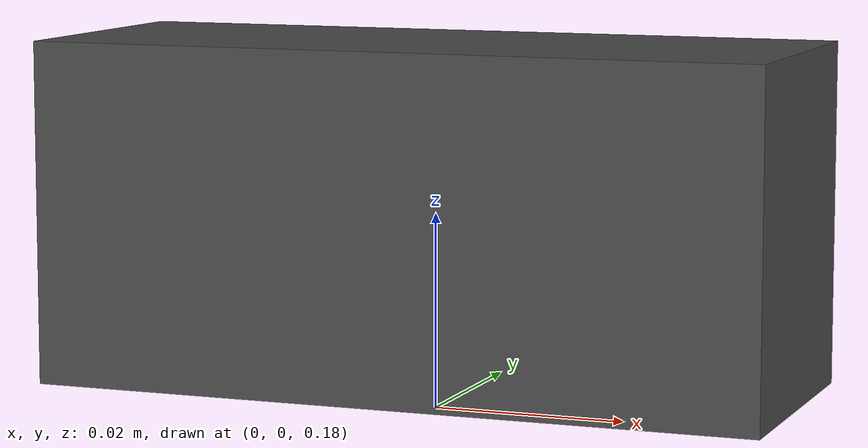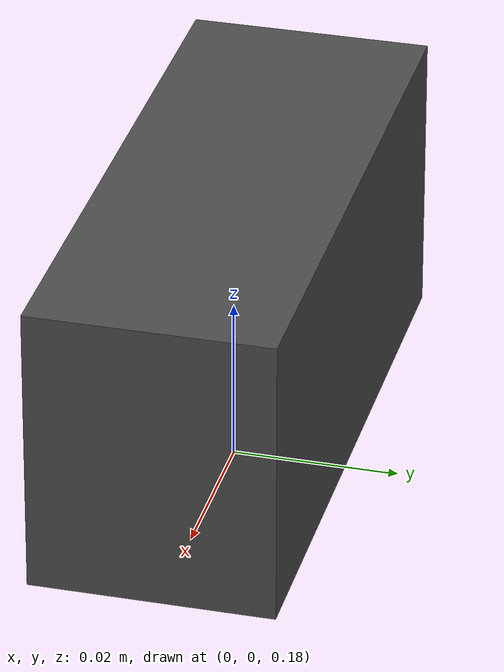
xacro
<?xml version="1.0"?>
<robot xmlns:xacro="http://www.ros.org/wiki/xacro" name="flea3">

  <link name="world"/>

  <xacro:include filename="$(find pointgrey_camera_description)/urdf/pointgrey_flea3.urdf.xacro" />

  <pointgrey_flea3 frame="flea3" name="flea3" camera_x="0.0754" camera_y="0.029" camera_z="0.035" camera_mass="0.085"
                   hfov="1.0471975512" fps="60" width="640" height="512"/>

  <joint name="world_camera_joint" type="fixed">
    <origin xyz="0 0 0.200" rpy="0 0 0" />
    <parent link="world" />
    <child link="flea3" />
  </joint>

</robot>

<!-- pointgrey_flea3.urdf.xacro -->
<robot xmlns:xacro="http://www.ros.org/wiki/xacro" name="pointgrey_flea3">
  <!-- camera_{x,y,z,mass} are they physical properties of the camera since
       flea3's can have different physical footprints.  -->
  <xacro:macro name="pointgrey_flea3"
    params="frame:=camera name:=camera camera_x:=0.0754 camera_y:=0.029 camera_z:=0.035 camera_mass:=0.085
             hfov:=1.0471975512 fps:=120 width:=1272 height:=1016 format:=R8G8B8 near:=0.5 far:=300">

    <link name="${frame}">
      <inertial>
        <mass value="${camera_mass}" />
        <inertia ixx="1e-6" ixy="0" ixz="0" iyy="1e-6" iyz="0" izz="1e-6" />
      </inertial>
      <visual>
        <origin xyz="0 0 0" rpy="0 0 0" />
        <geometry>
          <box size="${camera_x} ${camera_y} ${camera_z}"/>
        </geometry>
        <material name="dark_grey" />
      </visual>
      <collision>
        <origin xyz="0 0 0" rpy="0 0 0" />
        <geometry>
          <box size="${camera_x} ${camera_y} ${camera_z}" />
        </geometry>
      </collision>
    </link>

    <link name="${frame}_optical" />

    <joint name="${frame}_optical_joint" type="fixed">
      <origin xyz="0 0 0" rpy="-1.570796 0 -1.570796" />
      <parent link="${frame}" />
      <child link="${frame}_optical" />
    </joint>

    <!-- Gazebo -->
    <gazebo reference="${frame}_optical">
      <material>Gazebo/Grey</material>
      <sensor type="camera" name="${name}">
        <update_rate>${fps}</update_rate>
        <camera name="${name}">
          <pose>0 0 0 0 -1.5707 1.5707</pose>
          <horizontal_fov>${hfov}</horizontal_fov>
          <image>
            <width>${width}</width>
            <height>${height}</height>
            <format>${format}</format>
          </image>
          <clip>
            <near>${near}</near>
            <far>${far}</far>
          </clip>
          <noise>
            <type>gaussian</type>
            <mean>0.0</mean>
            <stddev>0.007</stddev>
          </noise>
        </camera>

        <plugin name="camera_controller" filename="libgazebo_ros_camera.so">
          <alwaysOn>true</alwaysOn>
          <updateRate>${fps}</updateRate>
          <cameraName>${name}</cameraName>
          <imageTopicName>image_raw</imageTopicName>
          <cameraInfoTopicName>camera_info</cameraInfoTopicName>
          <frameName>${frame}_optical</frameName>
          <hackBaseline>0.07</hackBaseline>
          <distortionK1>0.0</distortionK1>
          <distortionK2>0.0</distortionK2>
          <distortionK3>0.0</distortionK3>
          <distortionT1>0.0</distortionT1>
          <distortionT2>0.0</distortionT2>
        </plugin>
      </sensor>
    </gazebo>
  </xacro:macro>
</robot>
